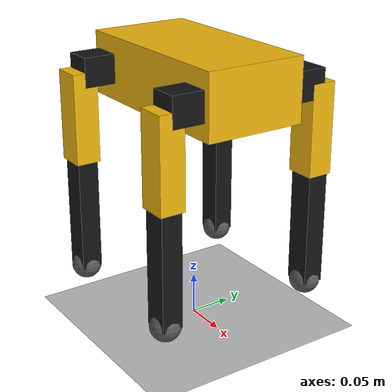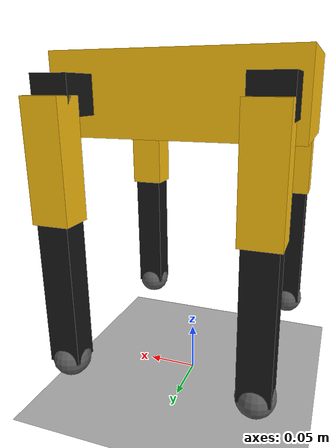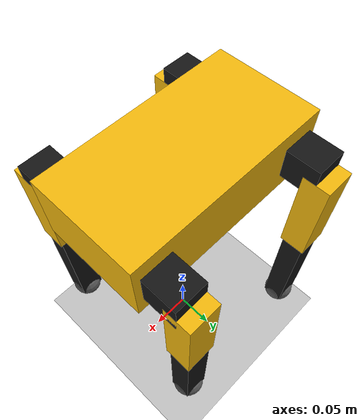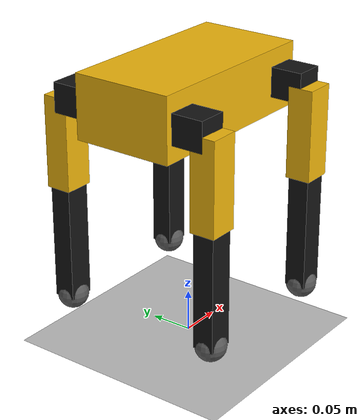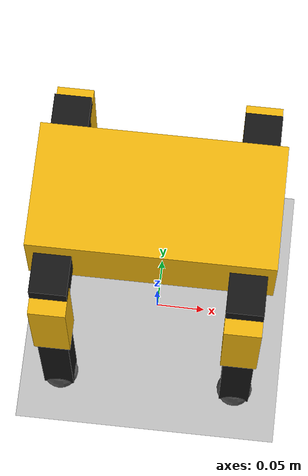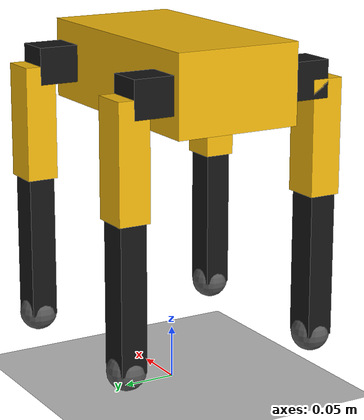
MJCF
<mujoco model="nova_sm3_provisional">
  <!-- Geometry from the published NovaSM3 reference; actuator data is provisional. -->
  <compiler angle="radian" inertiafromgeom="false"/>
  <option timestep="0.002" gravity="0 0 -9.81" integrator="implicitfast"/>
  <default>
    <joint damping="0.08" frictionloss="0.03" armature="0.002"/>
    <geom contype="1" conaffinity="1" condim="3" friction="0.9 0.02 0.002"/>
    <position kp="40" kv="4" ctrllimited="true"/>
  </default>
  <visual><global azimuth="135" elevation="-25"/><headlight ambient="0.4 0.4 0.4"/></visual>
  <asset>
    <material name="yellow" rgba="0.95 0.72 0.05 1"/>
    <material name="black" rgba="0.08 0.08 0.08 1"/>
    <material name="grey" rgba="0.35 0.35 0.35 1"/>
  </asset>
  <worldbody>
    <light pos="0 0 2" dir="0 0 -1"/>
    <geom name="floor" type="plane" size="2 2 0.05" rgba="0.75 0.75 0.75 1"/>
    <body name="base_link" pos="0 0 0.30">
      <freejoint name="base_free_joint"/>
      <inertial pos="0 0 0" mass="1.20" diaginertia="0.0020025 0.0058525 0.00673"/>
      <geom type="box" size="0.115 0.060 0.0375" material="yellow" mass="0"/>
      <site name="imu_site" pos="0 0 0" size="0.005" rgba="0 0 1 0"/>

      <body name="front_left_coxa_link" pos="0.09 0.06 0">
        <joint name="front_left_coxa_joint" axis="1 0 0" range="-0.60 0.60"/>
        <inertial pos="0 0.01905 0" mass="0.12" diaginertia="0.00009325 0.0000245 0.00009325"/>
        <geom type="box" pos="0 0.01905 0" size="0.0175 0.01905 0.0175" material="black" mass="0"/>
        <body name="front_left_femur_link" pos="0 0.0381 0">
          <joint name="front_left_femur_joint" axis="0 1 0" range="-1.20 1.20"/>
          <inertial pos="0 0 -0.053975" mass="0.12" diaginertia="0.000125 0.000127 0.00002125"/>
          <geom type="box" pos="0 0 -0.053975" size="0.0175 0.015 0.053975" material="yellow" mass="0"/>
          <body name="front_left_tibia_link" pos="0 0 -0.10795">
            <joint name="front_left_tibia_joint" axis="0 1 0" range="-2.20 0.10"/>
            <inertial pos="0 0 -0.082344" mass="0.14" diaginertia="0.000296 0.000298 0.0000179"/>
            <geom type="box" pos="0 0 -0.067945" size="0.015 0.0125 0.067945" material="black" mass="0"/>
            <geom name="front_left_foot" type="sphere" pos="0 0 -0.13589" size="0.018" material="grey" mass="0.03"/>
            <site name="front_left_foot_site" pos="0 0 -0.13589" size="0.018"/>
          </body>
        </body>
      </body>

      <body name="front_right_coxa_link" pos="0.09 -0.06 0">
        <joint name="front_right_coxa_joint" axis="-1 0 0" range="-0.60 0.60"/>
        <inertial pos="0 -0.01905 0" mass="0.12" diaginertia="0.00009325 0.0000245 0.00009325"/>
        <geom type="box" pos="0 -0.01905 0" size="0.0175 0.01905 0.0175" material="black" mass="0"/>
        <body name="front_right_femur_link" pos="0 -0.0381 0">
          <joint name="front_right_femur_joint" axis="0 1 0" range="-1.20 1.20"/>
          <inertial pos="0 0 -0.053975" mass="0.12" diaginertia="0.000125 0.000127 0.00002125"/>
          <geom type="box" pos="0 0 -0.053975" size="0.0175 0.015 0.053975" material="yellow" mass="0"/>
          <body name="front_right_tibia_link" pos="0 0 -0.10795">
            <joint name="front_right_tibia_joint" axis="0 1 0" range="-2.20 0.10"/>
            <inertial pos="0 0 -0.082344" mass="0.14" diaginertia="0.000296 0.000298 0.0000179"/>
            <geom type="box" pos="0 0 -0.067945" size="0.015 0.0125 0.067945" material="black" mass="0"/>
            <geom name="front_right_foot" type="sphere" pos="0 0 -0.13589" size="0.018" material="grey" mass="0.03"/>
            <site name="front_right_foot_site" pos="0 0 -0.13589" size="0.018"/>
          </body>
        </body>
      </body>

      <body name="rear_left_coxa_link" pos="-0.09 0.06 0">
        <joint name="rear_left_coxa_joint" axis="1 0 0" range="-0.60 0.60"/>
        <inertial pos="0 0.01905 0" mass="0.12" diaginertia="0.00009325 0.0000245 0.00009325"/>
        <geom type="box" pos="0 0.01905 0" size="0.0175 0.01905 0.0175" material="black" mass="0"/>
        <body name="rear_left_femur_link" pos="0 0.0381 0">
          <joint name="rear_left_femur_joint" axis="0 1 0" range="-1.20 1.20"/>
          <inertial pos="0 0 -0.053975" mass="0.12" diaginertia="0.000125 0.000127 0.00002125"/>
          <geom type="box" pos="0 0 -0.053975" size="0.0175 0.015 0.053975" material="yellow" mass="0"/>
          <body name="rear_left_tibia_link" pos="0 0 -0.10795">
            <joint name="rear_left_tibia_joint" axis="0 1 0" range="-2.20 0.10"/>
            <inertial pos="0 0 -0.082344" mass="0.14" diaginertia="0.000296 0.000298 0.0000179"/>
            <geom type="box" pos="0 0 -0.067945" size="0.015 0.0125 0.067945" material="black" mass="0"/>
            <geom name="rear_left_foot" type="sphere" pos="0 0 -0.13589" size="0.018" material="grey" mass="0.03"/>
            <site name="rear_left_foot_site" pos="0 0 -0.13589" size="0.018"/>
          </body>
        </body>
      </body>

      <body name="rear_right_coxa_link" pos="-0.09 -0.06 0">
        <joint name="rear_right_coxa_joint" axis="-1 0 0" range="-0.60 0.60"/>
        <inertial pos="0 -0.01905 0" mass="0.12" diaginertia="0.00009325 0.0000245 0.00009325"/>
        <geom type="box" pos="0 -0.01905 0" size="0.0175 0.01905 0.0175" material="black" mass="0"/>
        <body name="rear_right_femur_link" pos="0 -0.0381 0">
          <joint name="rear_right_femur_joint" axis="0 1 0" range="-1.20 1.20"/>
          <inertial pos="0 0 -0.053975" mass="0.12" diaginertia="0.000125 0.000127 0.00002125"/>
          <geom type="box" pos="0 0 -0.053975" size="0.0175 0.015 0.053975" material="yellow" mass="0"/>
          <body name="rear_right_tibia_link" pos="0 0 -0.10795">
            <joint name="rear_right_tibia_joint" axis="0 1 0" range="-2.20 0.10"/>
            <inertial pos="0 0 -0.082344" mass="0.14" diaginertia="0.000296 0.000298 0.0000179"/>
            <geom type="box" pos="0 0 -0.067945" size="0.015 0.0125 0.067945" material="black" mass="0"/>
            <geom name="rear_right_foot" type="sphere" pos="0 0 -0.13589" size="0.018" material="grey" mass="0.03"/>
            <site name="rear_right_foot_site" pos="0 0 -0.13589" size="0.018"/>
          </body>
        </body>
      </body>
    </body>
  </worldbody>
  <actuator>
    <position name="front_left_coxa_act" joint="front_left_coxa_joint" ctrlrange="-0.60 0.60"/>
    <position name="front_left_femur_act" joint="front_left_femur_joint" ctrlrange="-1.20 1.20"/>
    <position name="front_left_tibia_act" joint="front_left_tibia_joint" ctrlrange="-2.20 0.10"/>
    <position name="front_right_coxa_act" joint="front_right_coxa_joint" ctrlrange="-0.60 0.60"/>
    <position name="front_right_femur_act" joint="front_right_femur_joint" ctrlrange="-1.20 1.20"/>
    <position name="front_right_tibia_act" joint="front_right_tibia_joint" ctrlrange="-2.20 0.10"/>
    <position name="rear_left_coxa_act" joint="rear_left_coxa_joint" ctrlrange="-0.60 0.60"/>
    <position name="rear_left_femur_act" joint="rear_left_femur_joint" ctrlrange="-1.20 1.20"/>
    <position name="rear_left_tibia_act" joint="rear_left_tibia_joint" ctrlrange="-2.20 0.10"/>
    <position name="rear_right_coxa_act" joint="rear_right_coxa_joint" ctrlrange="-0.60 0.60"/>
    <position name="rear_right_femur_act" joint="rear_right_femur_joint" ctrlrange="-1.20 1.20"/>
    <position name="rear_right_tibia_act" joint="rear_right_tibia_joint" ctrlrange="-2.20 0.10"/>
  </actuator>
  <sensor>
    <framequat name="imu_orientation" objtype="body" objname="base_link"/>
    <gyro name="imu_gyro" site="imu_site"/>
    <accelerometer name="imu_accel" site="imu_site"/>
    <touch name="front_left_contact" site="front_left_foot_site"/>
    <touch name="front_right_contact" site="front_right_foot_site"/>
    <touch name="rear_left_contact" site="rear_left_foot_site"/>
    <touch name="rear_right_contact" site="rear_right_foot_site"/>
  </sensor>
  <keyframe>
    <!-- Pose reproducible de apoyo: base libre (xyz + cuaternión), 12 articulaciones. -->
    <key name="stand"
      qpos="0 0 0.235 1 0 0 0  0.10 0.42 -0.84  0.10 0.42 -0.84  0.10 0.42 -0.84  0.10 0.42 -0.84"
      ctrl="0.10 0.42 -0.84  0.10 0.42 -0.84  0.10 0.42 -0.84  0.10 0.42 -0.84"/>
  </keyframe>
</mujoco>
